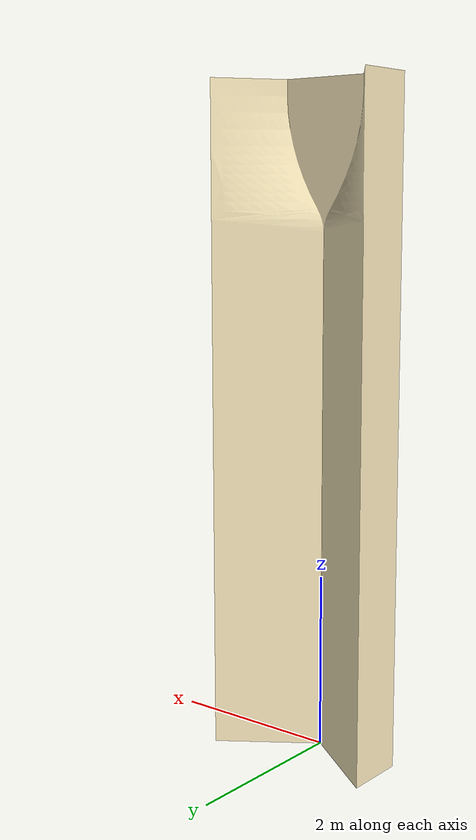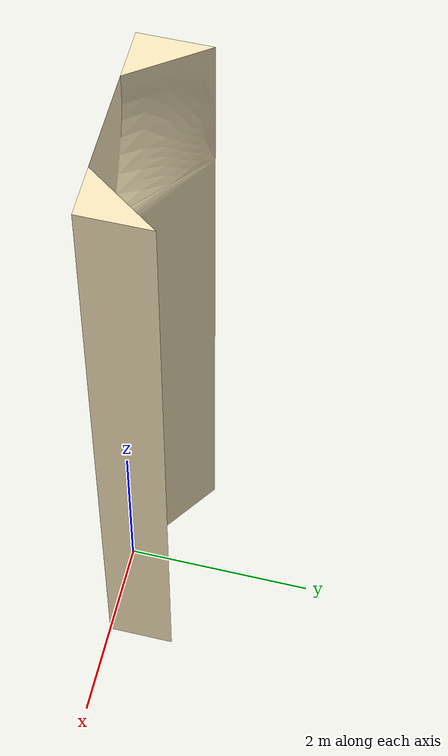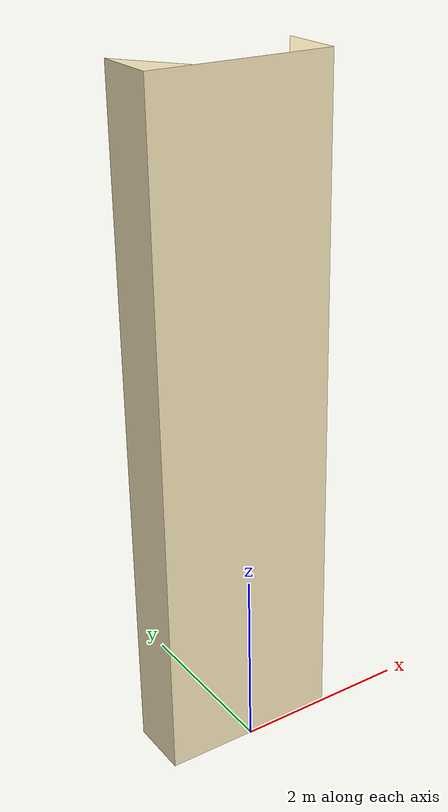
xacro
<?xml version="1.0"?>
<robot name="vchimney" xmlns:xacro="http://www.ros.org/wiki/xacro">

  <link name="vchimney_link">
    <visual>
      <geometry>
        <mesh filename="package://qm_description/meshes/vchimney/VChimney.stl" scale="0.001 0.001 0.001"/>
      </geometry>
      <material name="ocher">
          <color rgba="0.949 0.890 0.722 1"/>
      </material>
    </visual>
    <collision>
      <geometry>
        <mesh filename="package://qm_description/meshes/vchimney/VChimney.stl" scale="0.001 0.001 0.001"/>
      </geometry>
      <surface>
        <friction>
            <ode>
                <mu>0.7</mu>        <!-- Primary friction coefficient -->
                <mu2>0.7</mu2>      <!-- Secondary friction coefficient -->
            </ode>
        </friction>
      </surface>
    </collision>
    <inertial>
      <mass value="1.0"/>
      <inertia ixx="0.1" ixy="0.0" ixz="0.0" iyy="0.1" iyz="0.0" izz="0.1"/>
    </inertial>
  </link>

  <gazebo reference="vchimey_link">
    <material>Gazebo/Gray</material>
  </gazebo>

  <!-- Wall fixed to the world-->
  <link name="world"/>

  <joint name="base_link_fixed" type="fixed">
    <parent link="world"/>
    <child link="vchimney_link"/>
  </joint>

</robot>
